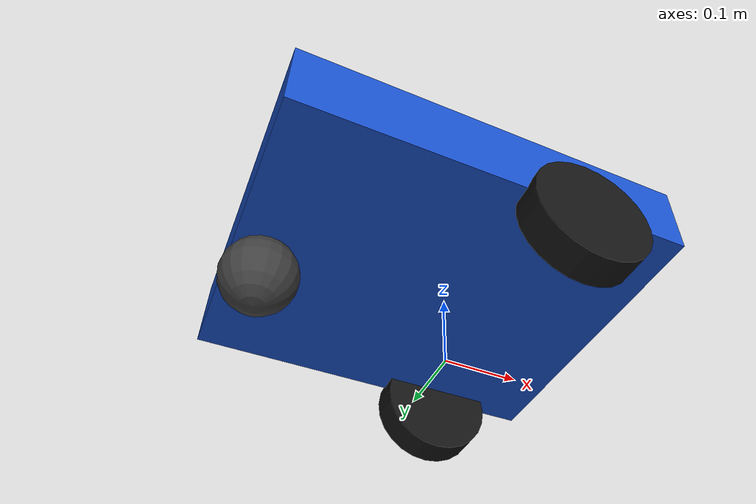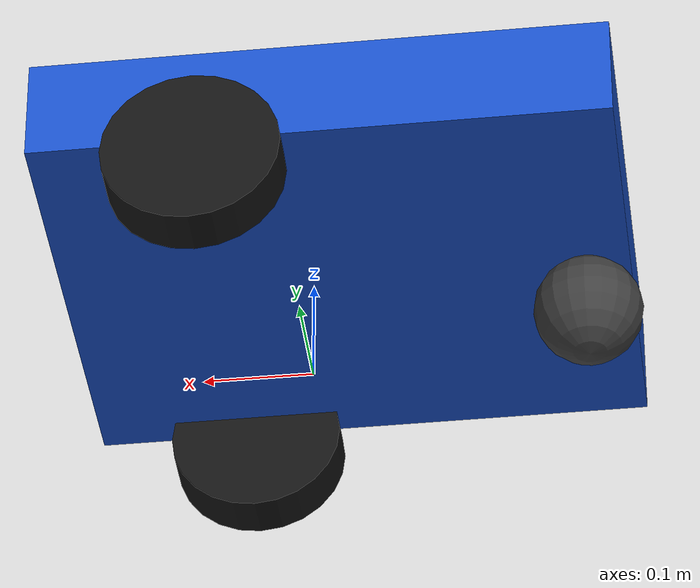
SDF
<?xml version="1.0"?>
<sdf version="1.10">
  <model name="climbot" canonical_link="base_link">
    <self_collide>false</self_collide>

    <!--
      Robot frame follows REP 103: +X forward, +Y left, +Z away from
      the driving surface. The world rotates this model onto the wall.
    -->
    <link name="base_link">
      <pose>-0.03 0 0.15 0 0 0</pose>
      <inertial>
        <mass>12.0</mass>
        <inertia>
          <ixx>0.2036</ixx>
          <iyy>0.2804</iyy>
          <izz>0.4636</izz>
          <ixy>0</ixy>
          <ixz>0</ixz>
          <iyz>0</iyz>
        </inertia>
      </inertial>
      <collision name="base_collision">
        <geometry>
          <box>
            <size>0.52 0.44 0.10</size>
          </box>
        </geometry>
      </collision>
      <visual name="base_visual">
        <geometry>
          <box>
            <size>0.52 0.44 0.10</size>
          </box>
        </geometry>
        <material>
          <ambient>0.08 0.22 0.55 1</ambient>
          <diffuse>0.10 0.32 0.80 1</diffuse>
          <specular>0.25 0.25 0.25 1</specular>
        </material>
      </visual>
      <visual name="front_marker">
        <pose>0.23 0 0.061 0 0 0</pose>
        <geometry>
          <box>
            <size>0.07 0.18 0.025</size>
          </box>
        </geometry>
        <material>
          <ambient>0.9 0.25 0.05 1</ambient>
          <diffuse>1.0 0.32 0.05 1</diffuse>
        </material>
      </visual>

      <!-- The IMU is rigidly mounted at the body origin.  Its frame is
           base_link so robot_localization needs no unmodelled static TF. -->
      <sensor name="imu" type="imu">
        <always_on>true</always_on>
        <update_rate>100</update_rate>
        <topic>/imu</topic>
        <gz_frame_id>base_link</gz_frame_id>
        <imu>
          <angular_velocity>
            <x><noise type="gaussian"><mean>0</mean><stddev>0.0002</stddev></noise></x>
            <y><noise type="gaussian"><mean>0</mean><stddev>0.0002</stddev></noise></y>
            <z><noise type="gaussian"><mean>0</mean><stddev>0.0002</stddev></noise></z>
          </angular_velocity>
          <linear_acceleration>
            <x><noise type="gaussian"><mean>0</mean><stddev>0.017</stddev></noise></x>
            <y><noise type="gaussian"><mean>0</mean><stddev>0.017</stddev></noise></y>
            <z><noise type="gaussian"><mean>0</mean><stddev>0.017</stddev></noise></z>
          </linear_acceleration>
        </imu>
      </sensor>
    </link>

    <link name="left_wheel_link">
      <pose>0.08 0.215 0.08 1.57079632679 0 0</pose>
      <inertial>
        <mass>1.0</mass>
        <inertia>
          <ixx>0.00177</ixx>
          <iyy>0.00177</iyy>
          <izz>0.00320</izz>
          <ixy>0</ixy>
          <ixz>0</ixz>
          <iyz>0</iyz>
        </inertia>
      </inertial>
      <collision name="left_wheel_collision">
        <geometry>
          <cylinder>
            <radius>0.08</radius>
            <length>0.045</length>
          </cylinder>
        </geometry>
        <surface>
          <friction>
            <ode>
              <mu>1.1</mu>
              <mu2>1.1</mu2>
              <fdir1>0 0 1</fdir1>
            </ode>
          </friction>
        </surface>
      </collision>
      <visual name="left_wheel_visual">
        <geometry>
          <cylinder>
            <radius>0.08</radius>
            <length>0.045</length>
          </cylinder>
        </geometry>
        <material>
          <ambient>0.04 0.04 0.04 1</ambient>
          <diffuse>0.08 0.08 0.08 1</diffuse>
        </material>
      </visual>

      <!-- Wall-contact normal load, recorded for the load-distribution test.
           Evaluation only: no control loop consumes this. -->
      <sensor name="left_wheel_contact" type="contact">
        <always_on>true</always_on>
        <update_rate>50</update_rate>
        <contact>
          <collision>left_wheel_collision</collision>
        </contact>
      </sensor>
    </link>

    <link name="right_wheel_link">
      <pose>0.08 -0.215 0.08 1.57079632679 0 0</pose>
      <inertial>
        <mass>1.0</mass>
        <inertia>
          <ixx>0.00177</ixx>
          <iyy>0.00177</iyy>
          <izz>0.00320</izz>
          <ixy>0</ixy>
          <ixz>0</ixz>
          <iyz>0</iyz>
        </inertia>
      </inertial>
      <collision name="right_wheel_collision">
        <geometry>
          <cylinder>
            <radius>0.08</radius>
            <length>0.045</length>
          </cylinder>
        </geometry>
        <surface>
          <friction>
            <ode>
              <mu>1.1</mu>
              <mu2>1.1</mu2>
              <fdir1>0 0 1</fdir1>
            </ode>
          </friction>
        </surface>
      </collision>
      <visual name="right_wheel_visual">
        <geometry>
          <cylinder>
            <radius>0.08</radius>
            <length>0.045</length>
          </cylinder>
        </geometry>
        <material>
          <ambient>0.04 0.04 0.04 1</ambient>
          <diffuse>0.08 0.08 0.08 1</diffuse>
        </material>
      </visual>

      <sensor name="right_wheel_contact" type="contact">
        <always_on>true</always_on>
        <update_rate>50</update_rate>
        <contact>
          <collision>right_wheel_collision</collision>
        </contact>
      </sensor>
    </link>

    <link name="caster_ball_link">
      <pose>-0.25 0 0.05 0 0 0</pose>
      <inertial>
        <mass>0.5</mass>
        <inertia>
          <ixx>0.0005</ixx>
          <iyy>0.0005</iyy>
          <izz>0.0005</izz>
          <ixy>0</ixy>
          <ixz>0</ixz>
          <iyz>0</iyz>
        </inertia>
      </inertial>
      <collision name="caster_collision">
        <geometry>
          <sphere>
            <radius>0.05</radius>
          </sphere>
        </geometry>
        <surface>
          <friction>
            <ode>
              <mu>0.35</mu>
              <mu2>0.35</mu2>
            </ode>
          </friction>
        </surface>
      </collision>
      <visual name="caster_visual">
        <geometry>
          <sphere>
            <radius>0.05</radius>
          </sphere>
        </geometry>
        <material>
          <ambient>0.15 0.15 0.15 1</ambient>
          <diffuse>0.25 0.25 0.25 1</diffuse>
        </material>
      </visual>

      <sensor name="caster_contact" type="contact">
        <always_on>true</always_on>
        <update_rate>50</update_rate>
        <contact>
          <collision>caster_collision</collision>
        </contact>
      </sensor>
    </link>

    <joint name="left_wheel_joint" type="revolute">
      <parent>base_link</parent>
      <child>left_wheel_link</child>
      <axis>
        <xyz expressed_in="__model__">0 1 0</xyz>
        <limit>
          <lower>-1e16</lower>
          <upper>1e16</upper>
          <effort>80</effort>
          <velocity>30</velocity>
        </limit>
        <dynamics>
          <damping>0.05</damping>
        </dynamics>
      </axis>
    </joint>

    <joint name="right_wheel_joint" type="revolute">
      <parent>base_link</parent>
      <child>right_wheel_link</child>
      <axis>
        <xyz expressed_in="__model__">0 1 0</xyz>
        <limit>
          <lower>-1e16</lower>
          <upper>1e16</upper>
          <effort>80</effort>
          <velocity>30</velocity>
        </limit>
        <dynamics>
          <damping>0.05</damping>
        </dynamics>
      </axis>
    </joint>

    <joint name="caster_ball_joint" type="ball">
      <parent>base_link</parent>
      <child>caster_ball_link</child>
    </joint>

    <plugin filename="gz-sim-diff-drive-system"
            name="gz::sim::systems::DiffDrive">
      <left_joint>left_wheel_joint</left_joint>
      <right_joint>right_wheel_joint</right_joint>
      <wheel_separation>0.43</wheel_separation>
      <wheel_radius>0.08</wheel_radius>
      <topic>/cmd_vel</topic>
      <odom_topic>/model/climbot/odometry</odom_topic>
      <tf_topic>/model/climbot/tf</tf_topic>
      <frame_id>odom</frame_id>
      <child_frame_id>base_link</child_frame_id>
      <odom_publish_frequency>50</odom_publish_frequency>
      <max_linear_velocity>0.30</max_linear_velocity>
      <min_linear_velocity>-0.30</min_linear_velocity>
      <max_angular_velocity>1.20</max_angular_velocity>
      <min_angular_velocity>-1.20</min_angular_velocity>
      <max_linear_acceleration>0.40</max_linear_acceleration>
      <min_linear_acceleration>-0.40</min_linear_acceleration>
      <max_angular_acceleration>1.50</max_angular_acceleration>
      <min_angular_acceleration>-1.50</min_angular_acceleration>
    </plugin>

    <plugin filename="gz-sim-wheel-slip-system"
            name="gz::sim::systems::WheelSlip">
      <wheel link_name="left_wheel_link">
        <wheel_radius>0.08</wheel_radius>
        <wheel_normal_force>77.0</wheel_normal_force>
        <slip_compliance_lateral>0.12</slip_compliance_lateral>
        <slip_compliance_longitudinal>0.04</slip_compliance_longitudinal>
      </wheel>
      <wheel link_name="right_wheel_link">
        <wheel_radius>0.08</wheel_radius>
        <wheel_normal_force>77.0</wheel_normal_force>
        <slip_compliance_lateral>0.12</slip_compliance_lateral>
        <slip_compliance_longitudinal>0.04</slip_compliance_longitudinal>
      </wheel>
    </plugin>

    <plugin filename="gz-sim-pose-publisher-system"
            name="gz::sim::systems::PosePublisher">
      <publish_model_pose>true</publish_model_pose>
      <publish_link_pose>true</publish_link_pose>
      <use_pose_vector_msg>true</use_pose_vector_msg>
      <update_frequency>50</update_frequency>
    </plugin>

    <!-- Physical world pose only: this is evaluation truth, not an EKF input. -->
    <plugin filename="gz-sim-odometry-publisher-system"
            name="gz::sim::systems::OdometryPublisher">
      <odom_frame>odom</odom_frame>
      <robot_base_frame>base_link</robot_base_frame>
      <dimensions>3</dimensions>
      <odom_publish_frequency>100</odom_publish_frequency>
      <odom_topic>/model/climbot/ground_truth</odom_topic>
      <odom_covariance_topic>/model/climbot/ground_truth_with_covariance</odom_covariance_topic>
    </plugin>
  </model>
</sdf>
